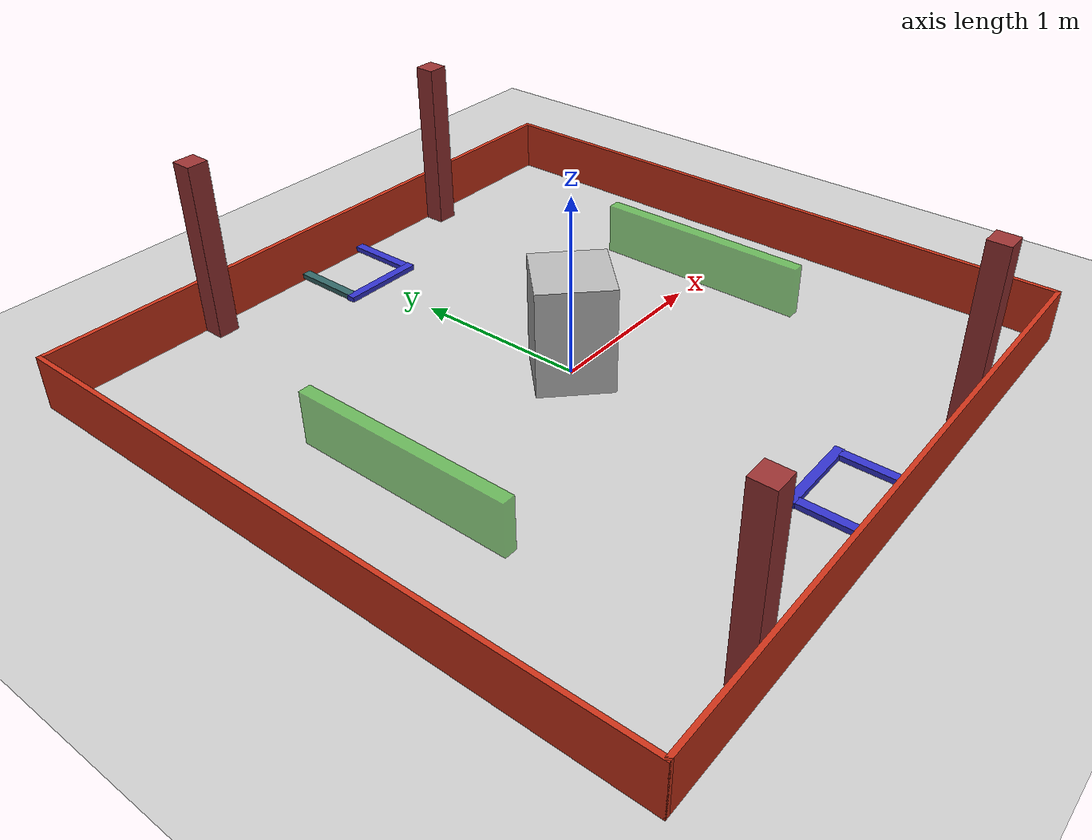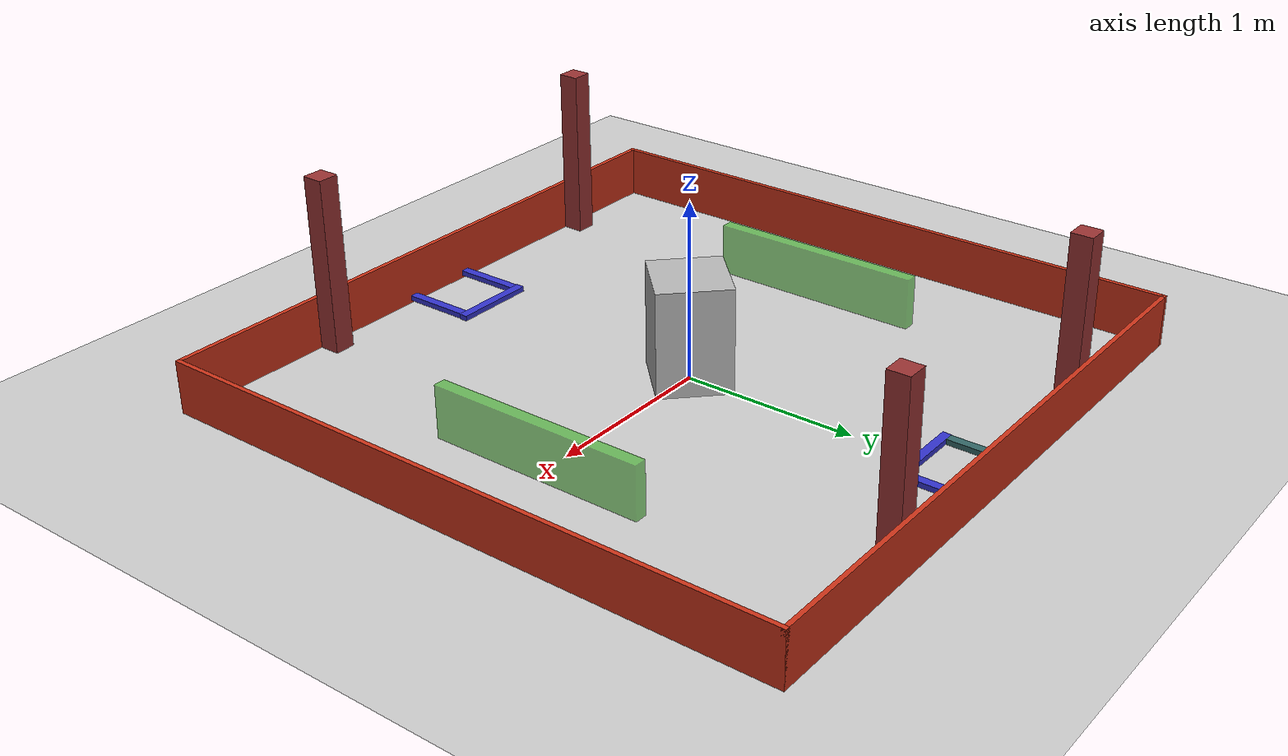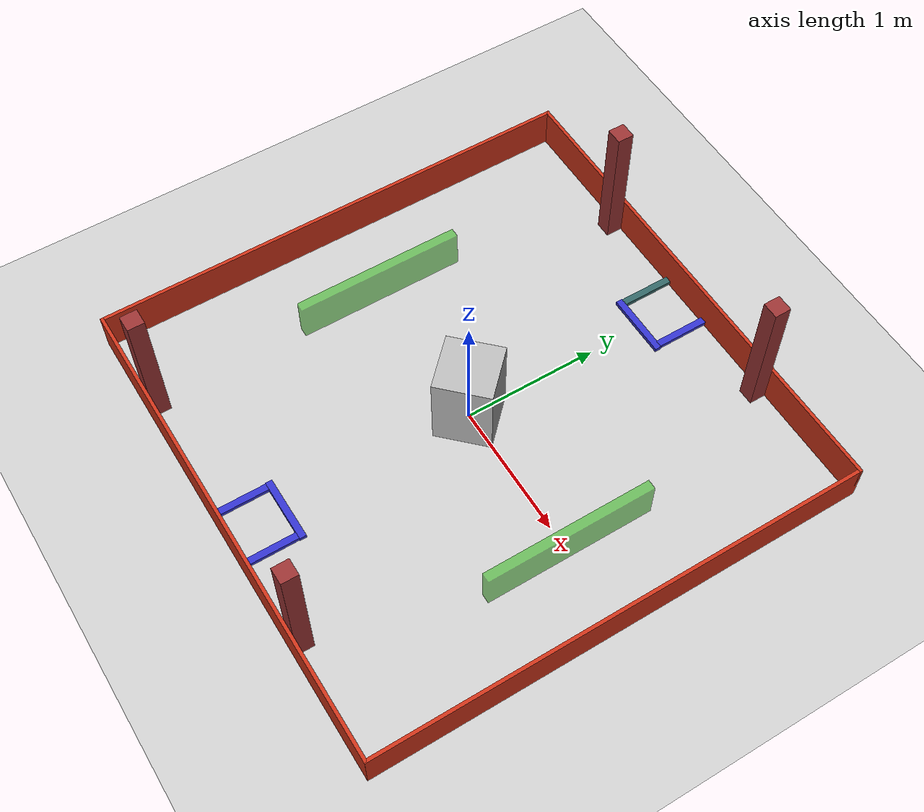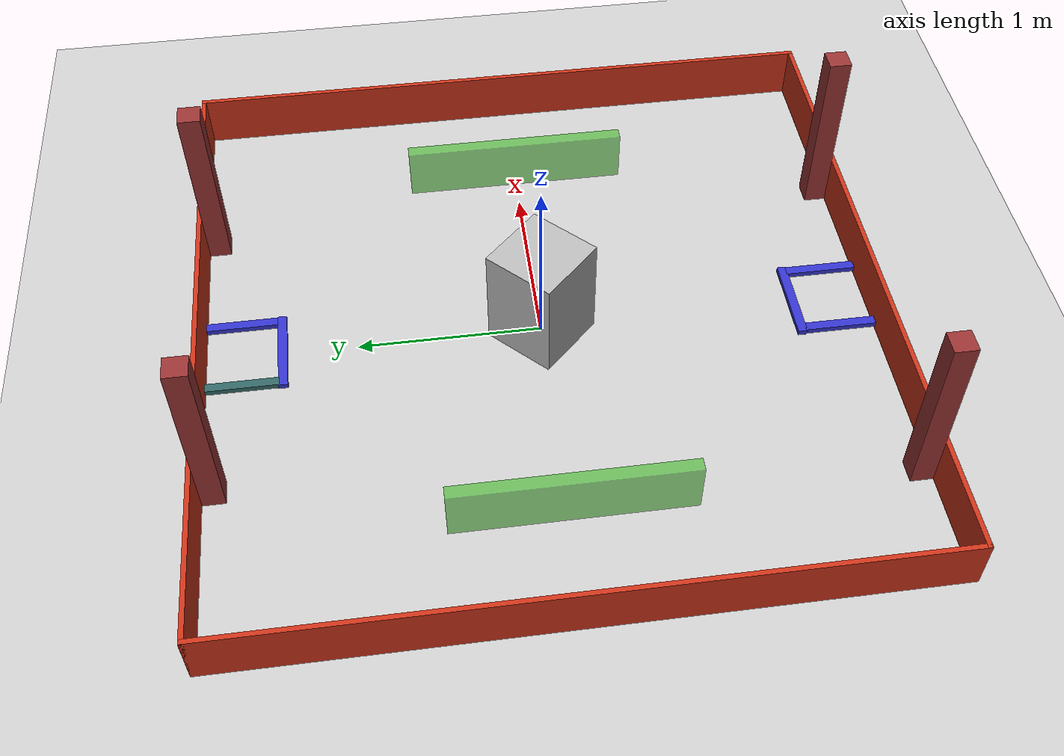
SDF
<?xml version="1.0" ?>
<sdf version="1.6">
  <world name="vex_world">
  <!--gazebo /home/tony/qkrt-nav/src/sentry_description/worlds/vex__test_world.sdf-->

    <include>
      <uri>model://sun</uri>
    </include>

    <include>
      <uri>model://ground_plane</uri>
    </include>

    <!-- Competition arena walls (simple 4-wall boundary) -->
    <model name="arena_boundary">
      <static>true</static>

      <!-- LEFT WALL: thickness(X)=0.025, length(Y)=1.835, height(Z)=0.3 -->
      <link name="wall_left">
        <pose>-1.8225 0 0.15 0 0 0</pose>
        <collision name="col">
          <geometry><box><size>0.025 3.67 0.3</size></box></geometry>
        </collision>
        <visual name="vis">
          <geometry><box><size>0.025 3.67 0.3</size></box></geometry>

          <material>
            <ambient>0.8 0.2 0.1 1</ambient> <!--enlight-->
            <diffuse>0.8 0.2 0.1 1</diffuse> <!--maincolor-->
            <!-- red green blue A -->
          </material>

        </visual>
      </link>

      <!-- RIGHT WALL -->
      <link name="wall_right">
        <pose>1.8225 0 0.15 0 0 0</pose>
        <collision name="col">
          <geometry><box><size>0.025 3.67 0.3</size></box></geometry>
        </collision>
        <visual name="vis">
          <geometry><box><size>0.025 3.67 0.3</size></box></geometry>

          <material>
            <ambient>0.8 0.2 0.1 1</ambient> <!--enlight-->
            <diffuse>0.8 0.2 0.1 1</diffuse> <!--maincolor-->
            <!-- red green blue A -->
          </material>

        </visual>
      </link>

      <!-- TOP WALL: length(X)=3.595 to connect left/right walls -->
      <link name="wall_top">
        <pose>0 1.8225 0.15 0 0 0</pose>
        <collision name="col">
          <geometry><box><size>3.67 0.025 0.3</size></box></geometry>
        </collision>
        <visual name="vis">
          <geometry><box><size>3.67 0.025 0.3</size></box></geometry>

          <material>
            <ambient>0.8 0.2 0.1 1</ambient> <!--enlight-->
            <diffuse>0.8 0.2 0.1 1</diffuse> <!--maincolor-->
            <!-- red green blue A -->
          </material>

        </visual>
      </link>

      <!-- BOTTOM WALL -->
      <link name="wall_bottom">
        <pose>0 -1.8225 0.15 0 0 0</pose>
        <collision name="col">
          <geometry><box><size>3.67 0.025 0.3</size></box></geometry>
        </collision>
        <visual name="vis">
          <geometry><box><size>3.67 0.025 0.3</size></box></geometry>

          <material>
            <ambient>0.8 0.2 0.1 1</ambient> <!--enlight-->
            <diffuse>0.8 0.2 0.1 1</diffuse> <!--maincolor-->
            <!-- red green blue A -->
          </material>

        </visual>
      </link>

      <!-- Center pillar: square cross-section, rotated 45 degrees (yaw = pi/4) -->
      <link name="pillar_link">
        <!-- pose: x y z roll pitch yaw -->
        <!-- yaw=0.785398 rad = 45 degrees -->
        <pose>0 0 0.3 0 0 0.785398</pose>

        <collision name="col">
          <geometry>
            <box>
              <!-- size_x size_y size_z -->
              <size>0.41 0.41 0.60</size>
            </box>
          </geometry>
        </collision>

        <visual name="vis">
          <geometry>
            <box>
              <size>0.41 0.41 0.60</size>
            </box>
          </geometry>
        </visual>
      </link>

      <!-- left middle   -->
      <link name="wall_left_middle">
        <pose>-1.205 0 0.15 0 0 0</pose>
        <collision name="col">
          <geometry><box><size>0.07 1.25 0.3</size></box></geometry>
        </collision>
        <visual name="vis">
          <geometry><box><size>0.07 1.25 0.3</size></box></geometry>

          <material>
            <ambient>0.2 0.7 0.1 0.6</ambient> <!--enlight-->
            <diffuse>0.2 0.7 0.1 0.6</diffuse> <!--maincolor-->
            <!-- red green blue A -->
          </material>

        </visual>
      </link>

      <!-- right middle   -->
      <link name="wall_right_middle">
        <pose>1.205 0 0.15 0 0 0</pose>
        <collision name="col">
          <geometry><box><size>0.07 1.25 0.3</size></box></geometry>
        </collision>
        <visual name="vis">
          <geometry><box><size>0.07 1.25 0.3</size></box></geometry>

          <material>
            <ambient>0.2 0.7 0.1 0.6</ambient> <!--enlight-->
            <diffuse>0.2 0.7 0.1 0.6</diffuse> <!--maincolor-->
            <!-- red green blue A -->
          </material>

        </visual>
      </link>

      <!-- red and blue   -->
      <link name="bottem_rb">
        <pose>0 -1.402 0.03 0 0 0</pose>
        <collision name="col">
          <geometry><box><size>0.48 0.05 0.03</size></box></geometry>
        </collision>
        <visual name="vis">
          <geometry><box><size>0.48 0.05 0.03</size></box></geometry>

          <material>
            <ambient>0.2 0.2 0.8 1</ambient> <!--enlight-->
            <diffuse>0.2 0.2 0.8 1</diffuse> <!--maincolor-->
            <!-- red green blue A -->
          </material>

        </visual>
      </link>

      <!-- red and blue   -->
      <link name="top_rb">
        <pose>0 1.402 0.03 0 0 0</pose>
        <collision name="col">
          <geometry><box><size>0.48 0.05 0.03</size></box></geometry>
        </collision>
        <visual name="vis">
          <geometry><box><size>0.48 0.05 0.03</size></box></geometry>

          <material>
            <ambient>0.2 0.2 0.8 1</ambient> <!--enlight-->
            <diffuse>0.2 0.2 0.8 1</diffuse> <!--maincolor-->
            <!-- red green blue A -->
          </material>

        </visual>
      </link>

      <!-- red and blue   -->
      <link name="bottem_rb_left">
        <pose>-0.21 -1.62 0.03 0 0 0</pose>
        <collision name="col">
          <geometry><box><size>0.05 0.4 0.03</size></box></geometry>
        </collision>
        <visual name="vis">
          <geometry><box><size>0.05 0.4 0.03</size></box></geometry>

          <material>
            <ambient>0.2 0.2 0.8 1</ambient> <!--enlight-->
            <diffuse>0.2 0.2 0.8 1</diffuse> <!--maincolor-->
            <!-- red green blue A -->
          </material>

        </visual>
      </link>

      <!-- red and blue   -->
      <link name="bottem_rb_right">
        <pose>0.21 -1.62 0.03 0 0 0</pose>
        <collision name="col">
          <geometry><box><size>0.05 0.4 0.03</size></box></geometry>
        </collision>
        <visual name="vis">
          <geometry><box><size>0.05 0.4 0.03</size></box></geometry>

          <material>
            <ambient>0.2 0.2 0.8 1</ambient> <!--enlight-->
            <diffuse>0.2 0.2 0.8 1</diffuse> <!--maincolor-->
            <!-- red green blue A -->
          </material>

        </visual>
      </link>

      <!-- red and blue   -->
      <link name="top_rb_left">
        <pose>-0.21 1.62 0.03 0 0 0</pose>
        <collision name="col">
          <geometry><box><size>0.05 0.395 0.03</size></box></geometry>
        </collision>
        <visual name="vis">
          <geometry><box><size>0.05 0.395 0.03</size></box></geometry>

          <material>
            <ambient>0.2 0.4 0.4 1</ambient> <!--enlight-->
            <diffuse>0.2 0.4 0.4 1</diffuse> <!--maincolor-->
            <!-- red green blue A -->
          </material>

        </visual>
      </link>

      <!-- red and blue   -->
      <link name="top_rb_right">
        <pose>0.21 1.62 0.03 0 0 0</pose>
        <collision name="col">
          <geometry><box><size>0.05 0.395 0.03</size></box></geometry>
        </collision>
        <visual name="vis">
          <geometry><box><size>0.05 0.395 0.03</size></box></geometry>

          <material>
            <ambient>0.2 0.2 0.8 1</ambient> <!--enlight-->
            <diffuse>0.2 0.2 0.8 1</diffuse> <!--maincolor-->
            <!-- red green blue A -->
          </material>

        </visual>
      </link>

     <!-- pillars   -->
      <link name="pillar_top_left">
        <pose>-0.86 1.75 0.5 0 0 0</pose>
        <collision name="col">
          <geometry><box><size>0.12 0.12 1</size></box></geometry>
        </collision>
        <visual name="vis">
          <geometry><box><size>0.12 0.12 1</size></box></geometry>

          <material>
            <ambient>0.1 0.2 0.8 1</ambient> <!--enlight-->
            <diffuse>0.6 0.2 0.2 1</diffuse> <!--maincolor-->
            <!-- red green blue A -->
          </material>

        </visual>
      </link>

     <!-- pillars   -->
      <link name="pillar_top_right">
        <pose>0.86 1.75 0.5 0 0 0</pose>
        <collision name="col">
          <geometry><box><size>0.12 0.12 1</size></box></geometry>
        </collision>
        <visual name="vis">
          <geometry><box><size>0.12 0.12 1</size></box></geometry>

          <material>
            <ambient>0.1 0.2 0.8 1</ambient> <!--enlight-->
            <diffuse>0.6 0.2 0.2 1</diffuse> <!--maincolor-->
            <!-- red green blue A -->
          </material>

        </visual>
      </link>

     <!-- pillars   -->
      <link name="pillar_bottom_right">
        <pose>0.86 -1.75 0.5 0 0 0</pose>
        <collision name="col">
          <geometry><box><size>0.12 0.12 1</size></box></geometry>
        </collision>
        <visual name="vis">
          <geometry><box><size>0.12 0.12 1</size></box></geometry>

          <material>
            <ambient>0.1 0.2 0.8 1</ambient> <!--enlight-->
            <diffuse>0.6 0.2 0.2 1</diffuse> <!--maincolor-->
            <!-- red green blue A -->
          </material>

        </visual>
      </link>

     <!-- pillars   -->
      <link name="pillar_bottom_left">
        <pose>-1.18 -1.75 0.5 0 0 0</pose>
        <collision name="col">
          <geometry><box><size>0.12 0.12 1</size></box></geometry>
        </collision>

        <visual name="vis">
          <geometry><box><size>0.12 0.12 1</size></box></geometry>

          <material>
            <ambient>0.1 0.2 0.8 1</ambient> <!--enlight-->
            <diffuse>0.6 0.2 0.2 1</diffuse> <!--maincolor-->
            <!-- red green blue A -->
          </material>

        </visual>
      </link>

    </model>

  </world>
</sdf>
